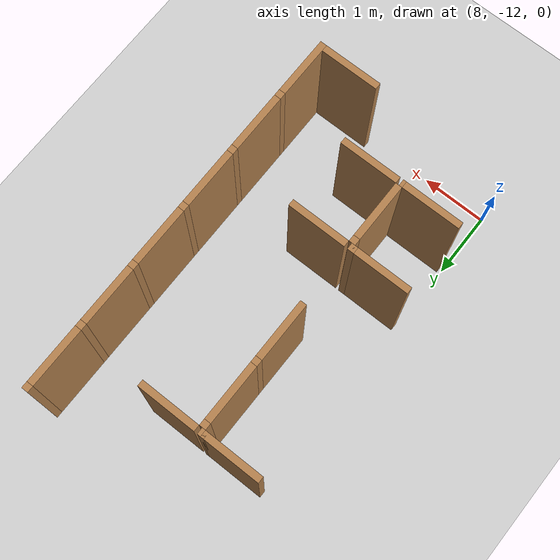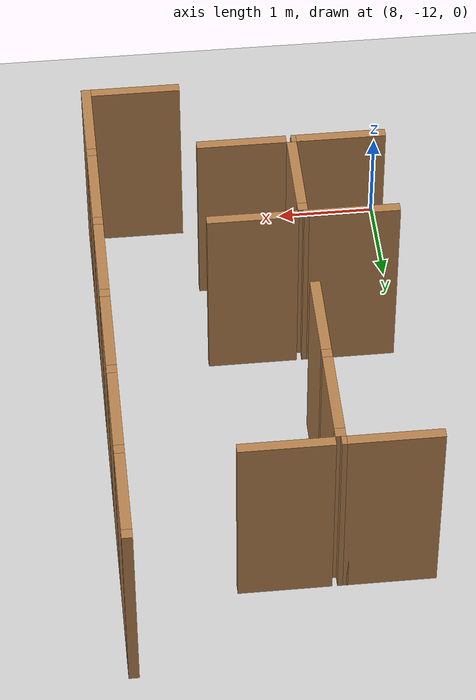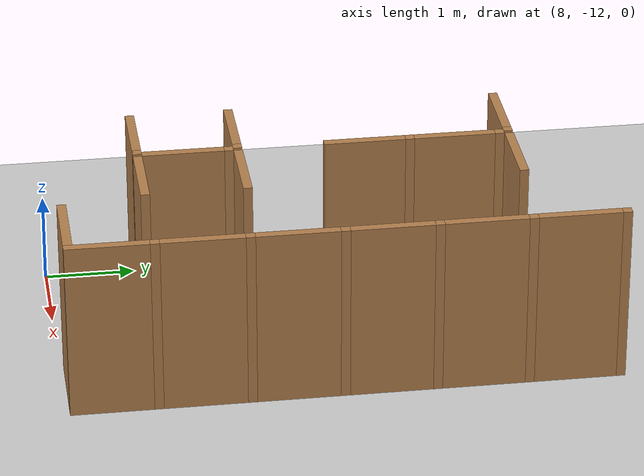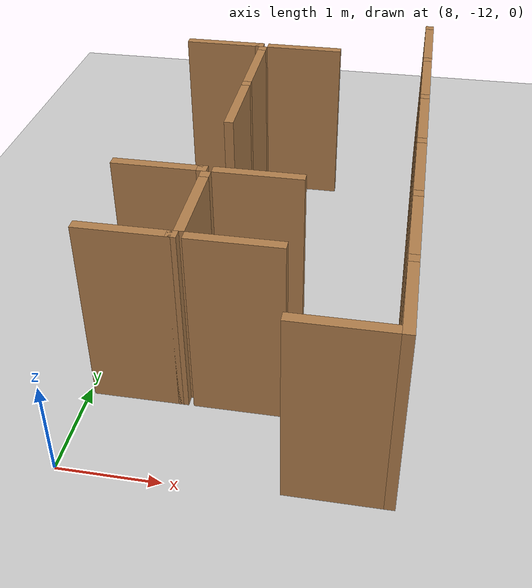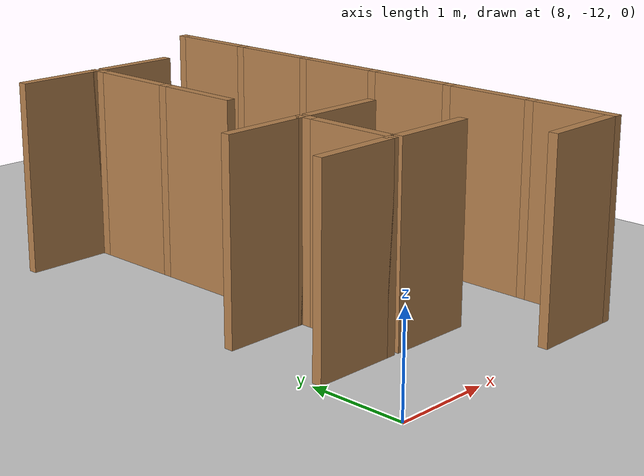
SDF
<sdf version="1.6">
 <world name="default">
  <include><uri>model://sun</uri></include>
  <model name="ground_plane">
   <static>true</static>
   <link name="link">
    <collision name="collision"><geometry><plane><size>12.0 12.0</size></plane></geometry></collision>
    <visual name="visual">
     <cast_shadows>false</cast_shadows>
     <geometry><plane><size>12.0 12.0</size></plane></geometry>
     <material>
      <script><uri>file://media/materials/scripts/gazebo.material</uri><name>Gazebo/Grey</name></script>
     </material>
    </visual>
   </link>
   <pose>6.0 -6.0 0 0 0 0</pose>
  </model>
  <model name="vwall_6_11">
   <pose>11.0 -6.5 1.0 0 0 0</pose>
   <link name="link">
    <collision name="collision"><geometry><box><size>0.1 0.9 2</size></box></geometry></collision>
    <visual name="visual">
     <geometry><box><size>0.1 0.9 2</size></box></geometry>
     <material>
      <script><uri>file://media/materials/scripts/gazebo.material</uri><name>Gazebo/Wood</name></script>
     </material>
    </visual>
   </link>
  </model>
  <model name="joint_11.0_-6.0">
   <pose>11.0 -6.0 1.0 0 0 0</pose>
   <link name="link">
    <collision name="collision"><geometry><box><size>0.1 0.1 2</size></box></geometry></collision>
    <visual name="visual">
     <geometry><box><size>0.1 0.1 2</size></box></geometry>
     <material>
      <script><uri>file://media/materials/scripts/gazebo.material</uri><name>Gazebo/Wood</name></script>
     </material>
    </visual>
   </link>
  </model>
  <model name="vwall_7_9">
   <pose>9.0 -7.5 1.0 0 0 0</pose>
   <link name="link">
    <collision name="collision"><geometry><box><size>0.1 0.9 2</size></box></geometry></collision>
    <visual name="visual">
     <geometry><box><size>0.1 0.9 2</size></box></geometry>
     <material>
      <script><uri>file://media/materials/scripts/gazebo.material</uri><name>Gazebo/Wood</name></script>
     </material>
    </visual>
   </link>
  </model>
  <model name="joint_9.0_-7.0">
   <pose>9.0 -7.0 1.0 0 0 0</pose>
   <link name="link">
    <collision name="collision"><geometry><box><size>0.1 0.1 2</size></box></geometry></collision>
    <visual name="visual">
     <geometry><box><size>0.1 0.1 2</size></box></geometry>
     <material>
      <script><uri>file://media/materials/scripts/gazebo.material</uri><name>Gazebo/Wood</name></script>
     </material>
    </visual>
   </link>
  </model>
  <model name="vwall_7_11">
   <pose>11.0 -7.5 1.0 0 0 0</pose>
   <link name="link">
    <collision name="collision"><geometry><box><size>0.1 0.9 2</size></box></geometry></collision>
    <visual name="visual">
     <geometry><box><size>0.1 0.9 2</size></box></geometry>
     <material>
      <script><uri>file://media/materials/scripts/gazebo.material</uri><name>Gazebo/Wood</name></script>
     </material>
    </visual>
   </link>
  </model>
  <model name="joint_11.0_-7.0">
   <pose>11.0 -7.0 1.0 0 0 0</pose>
   <link name="link">
    <collision name="collision"><geometry><box><size>0.1 0.1 2</size></box></geometry></collision>
    <visual name="visual">
     <geometry><box><size>0.1 0.1 2</size></box></geometry>
     <material>
      <script><uri>file://media/materials/scripts/gazebo.material</uri><name>Gazebo/Wood</name></script>
     </material>
    </visual>
   </link>
  </model>
  <model name="vwall_8_9">
   <pose>9.0 -8.5 1.0 0 0 0</pose>
   <link name="link">
    <collision name="collision"><geometry><box><size>0.1 0.9 2</size></box></geometry></collision>
    <visual name="visual">
     <geometry><box><size>0.1 0.9 2</size></box></geometry>
     <material>
      <script><uri>file://media/materials/scripts/gazebo.material</uri><name>Gazebo/Wood</name></script>
     </material>
    </visual>
   </link>
  </model>
  <model name="joint_9.0_-8.0">
   <pose>9.0 -8.0 1.0 0 0 0</pose>
   <link name="link">
    <collision name="collision"><geometry><box><size>0.1 0.1 2</size></box></geometry></collision>
    <visual name="visual">
     <geometry><box><size>0.1 0.1 2</size></box></geometry>
     <material>
      <script><uri>file://media/materials/scripts/gazebo.material</uri><name>Gazebo/Wood</name></script>
     </material>
    </visual>
   </link>
  </model>
  <model name="vwall_8_11">
   <pose>11.0 -8.5 1.0 0 0 0</pose>
   <link name="link">
    <collision name="collision"><geometry><box><size>0.1 0.9 2</size></box></geometry></collision>
    <visual name="visual">
     <geometry><box><size>0.1 0.9 2</size></box></geometry>
     <material>
      <script><uri>file://media/materials/scripts/gazebo.material</uri><name>Gazebo/Wood</name></script>
     </material>
    </visual>
   </link>
  </model>
  <model name="joint_11.0_-8.0">
   <pose>11.0 -8.0 1.0 0 0 0</pose>
   <link name="link">
    <collision name="collision"><geometry><box><size>0.1 0.1 2</size></box></geometry></collision>
    <visual name="visual">
     <geometry><box><size>0.1 0.1 2</size></box></geometry>
     <material>
      <script><uri>file://media/materials/scripts/gazebo.material</uri><name>Gazebo/Wood</name></script>
     </material>
    </visual>
   </link>
  </model>
  <model name="vwall_9_11">
   <pose>11.0 -9.5 1.0 0 0 0</pose>
   <link name="link">
    <collision name="collision"><geometry><box><size>0.1 0.9 2</size></box></geometry></collision>
    <visual name="visual">
     <geometry><box><size>0.1 0.9 2</size></box></geometry>
     <material>
      <script><uri>file://media/materials/scripts/gazebo.material</uri><name>Gazebo/Wood</name></script>
     </material>
    </visual>
   </link>
  </model>
  <model name="joint_11.0_-9.0">
   <pose>11.0 -9.0 1.0 0 0 0</pose>
   <link name="link">
    <collision name="collision"><geometry><box><size>0.1 0.1 2</size></box></geometry></collision>
    <visual name="visual">
     <geometry><box><size>0.1 0.1 2</size></box></geometry>
     <material>
      <script><uri>file://media/materials/scripts/gazebo.material</uri><name>Gazebo/Wood</name></script>
     </material>
    </visual>
   </link>
  </model>
  <model name="vwall_10_9">
   <pose>9.0 -10.5 1.0 0 0 0</pose>
   <link name="link">
    <collision name="collision"><geometry><box><size>0.1 0.9 2</size></box></geometry></collision>
    <visual name="visual">
     <geometry><box><size>0.1 0.9 2</size></box></geometry>
     <material>
      <script><uri>file://media/materials/scripts/gazebo.material</uri><name>Gazebo/Wood</name></script>
     </material>
    </visual>
   </link>
  </model>
  <model name="joint_9.0_-10.0">
   <pose>9.0 -10.0 1.0 0 0 0</pose>
   <link name="link">
    <collision name="collision"><geometry><box><size>0.1 0.1 2</size></box></geometry></collision>
    <visual name="visual">
     <geometry><box><size>0.1 0.1 2</size></box></geometry>
     <material>
      <script><uri>file://media/materials/scripts/gazebo.material</uri><name>Gazebo/Wood</name></script>
     </material>
    </visual>
   </link>
  </model>
  <model name="vwall_10_11">
   <pose>11.0 -10.5 1.0 0 0 0</pose>
   <link name="link">
    <collision name="collision"><geometry><box><size>0.1 0.9 2</size></box></geometry></collision>
    <visual name="visual">
     <geometry><box><size>0.1 0.9 2</size></box></geometry>
     <material>
      <script><uri>file://media/materials/scripts/gazebo.material</uri><name>Gazebo/Wood</name></script>
     </material>
    </visual>
   </link>
  </model>
  <model name="joint_11.0_-10.0">
   <pose>11.0 -10.0 1.0 0 0 0</pose>
   <link name="link">
    <collision name="collision"><geometry><box><size>0.1 0.1 2</size></box></geometry></collision>
    <visual name="visual">
     <geometry><box><size>0.1 0.1 2</size></box></geometry>
     <material>
      <script><uri>file://media/materials/scripts/gazebo.material</uri><name>Gazebo/Wood</name></script>
     </material>
    </visual>
   </link>
  </model>
  <model name="vwall_11_11">
   <pose>11.0 -11.5 1.0 0 0 0</pose>
   <link name="link">
    <collision name="collision"><geometry><box><size>0.1 0.9 2</size></box></geometry></collision>
    <visual name="visual">
     <geometry><box><size>0.1 0.9 2</size></box></geometry>
     <material>
      <script><uri>file://media/materials/scripts/gazebo.material</uri><name>Gazebo/Wood</name></script>
     </material>
    </visual>
   </link>
  </model>
  <model name="joint_11.0_-11.0">
   <pose>11.0 -11.0 1.0 0 0 0</pose>
   <link name="link">
    <collision name="collision"><geometry><box><size>0.1 0.1 2</size></box></geometry></collision>
    <visual name="visual">
     <geometry><box><size>0.1 0.1 2</size></box></geometry>
     <material>
      <script><uri>file://media/materials/scripts/gazebo.material</uri><name>Gazebo/Wood</name></script>
     </material>
    </visual>
   </link>
  </model>
  <model name="hwall_6_8">
   <pose>8.5 -6.9 1.0 0 0 0</pose>
   <link name="link">
    <collision name="collision"><geometry><box><size>0.9 0.1 2</size></box></geometry></collision>
    <visual name="visual">
     <geometry><box><size>0.9 0.1 2</size></box></geometry>
     <material>
      <script><uri>file://media/materials/scripts/gazebo.material</uri><name>Gazebo/Wood</name></script>
     </material>
    </visual>
   </link>
  </model>
  <model name="joint_8.95_-6.9">
   <pose>8.95 -6.9 1.0 0 0 0</pose>
   <link name="link">
    <collision name="collision"><geometry><box><size>0.1 0.1 2</size></box></geometry></collision>
    <visual name="visual">
     <geometry><box><size>0.1 0.1 2</size></box></geometry>
     <material>
      <script><uri>file://media/materials/scripts/gazebo.material</uri><name>Gazebo/Wood</name></script>
     </material>
    </visual>
   </link>
  </model>
  <model name="hwall_6_9">
   <pose>9.5 -6.9 1.0 0 0 0</pose>
   <link name="link">
    <collision name="collision"><geometry><box><size>0.9 0.1 2</size></box></geometry></collision>
    <visual name="visual">
     <geometry><box><size>0.9 0.1 2</size></box></geometry>
     <material>
      <script><uri>file://media/materials/scripts/gazebo.material</uri><name>Gazebo/Wood</name></script>
     </material>
    </visual>
   </link>
  </model>
  <model name="hwall_9_8">
   <pose>8.5 -9.9 1.0 0 0 0</pose>
   <link name="link">
    <collision name="collision"><geometry><box><size>0.9 0.1 2</size></box></geometry></collision>
    <visual name="visual">
     <geometry><box><size>0.9 0.1 2</size></box></geometry>
     <material>
      <script><uri>file://media/materials/scripts/gazebo.material</uri><name>Gazebo/Wood</name></script>
     </material>
    </visual>
   </link>
  </model>
  <model name="joint_8.95_-9.9">
   <pose>8.95 -9.9 1.0 0 0 0</pose>
   <link name="link">
    <collision name="collision"><geometry><box><size>0.1 0.1 2</size></box></geometry></collision>
    <visual name="visual">
     <geometry><box><size>0.1 0.1 2</size></box></geometry>
     <material>
      <script><uri>file://media/materials/scripts/gazebo.material</uri><name>Gazebo/Wood</name></script>
     </material>
    </visual>
   </link>
  </model>
  <model name="hwall_9_9">
   <pose>9.5 -9.9 1.0 0 0 0</pose>
   <link name="link">
    <collision name="collision"><geometry><box><size>0.9 0.1 2</size></box></geometry></collision>
    <visual name="visual">
     <geometry><box><size>0.9 0.1 2</size></box></geometry>
     <material>
      <script><uri>file://media/materials/scripts/gazebo.material</uri><name>Gazebo/Wood</name></script>
     </material>
    </visual>
   </link>
  </model>
  <model name="hwall_11_8">
   <pose>8.5 -11.0 1.0 0 0 0</pose>
   <link name="link">
    <collision name="collision"><geometry><box><size>0.9 0.1 2</size></box></geometry></collision>
    <visual name="visual">
     <geometry><box><size>0.9 0.1 2</size></box></geometry>
     <material>
      <script><uri>file://media/materials/scripts/gazebo.material</uri><name>Gazebo/Wood</name></script>
     </material>
    </visual>
   </link>
  </model>
  <model name="joint_8.95_-11.0">
   <pose>8.95 -11.0 1.0 0 0 0</pose>
   <link name="link">
    <collision name="collision"><geometry><box><size>0.1 0.1 2</size></box></geometry></collision>
    <visual name="visual">
     <geometry><box><size>0.1 0.1 2</size></box></geometry>
     <material>
      <script><uri>file://media/materials/scripts/gazebo.material</uri><name>Gazebo/Wood</name></script>
     </material>
    </visual>
   </link>
  </model>
  <model name="hwall_11_9">
   <pose>9.5 -11.0 1.0 0 0 0</pose>
   <link name="link">
    <collision name="collision"><geometry><box><size>0.9 0.1 2</size></box></geometry></collision>
    <visual name="visual">
     <geometry><box><size>0.9 0.1 2</size></box></geometry>
     <material>
      <script><uri>file://media/materials/scripts/gazebo.material</uri><name>Gazebo/Wood</name></script>
     </material>
    </visual>
   </link>
  </model>
  <model name="hwall_11_10">
   <pose>10.5 -11.9 1.0 0 0 0</pose>
   <link name="link">
    <collision name="collision"><geometry><box><size>0.9 0.1 2</size></box></geometry></collision>
    <visual name="visual">
     <geometry><box><size>0.9 0.1 2</size></box></geometry>
     <material>
      <script><uri>file://media/materials/scripts/gazebo.material</uri><name>Gazebo/Wood</name></script>
     </material>
    </visual>
   </link>
  </model>
 </world>
</sdf>
